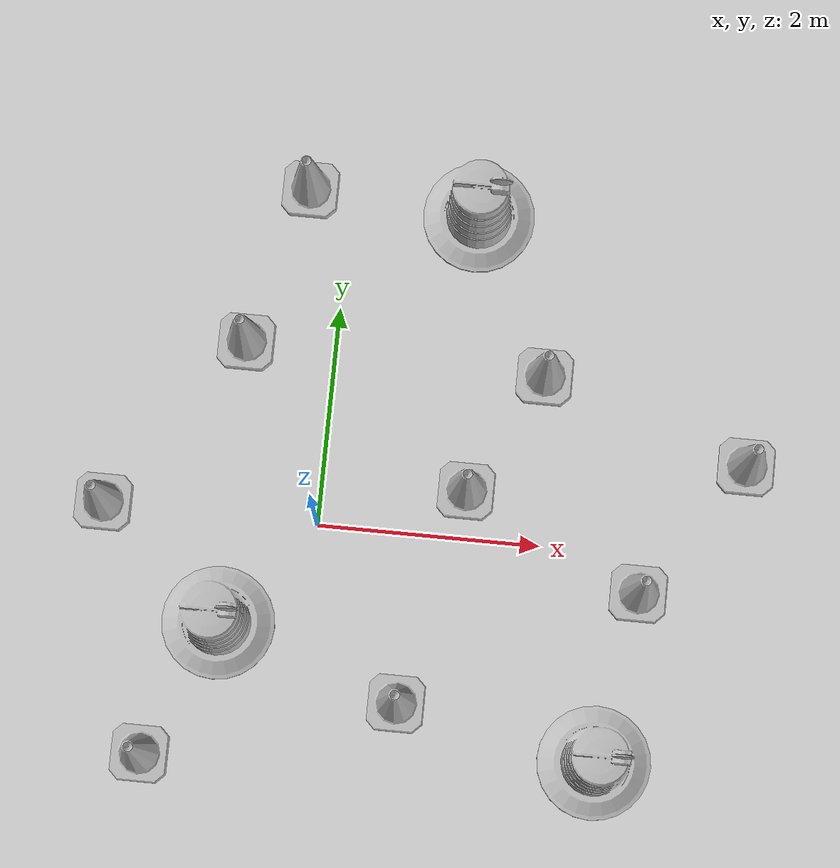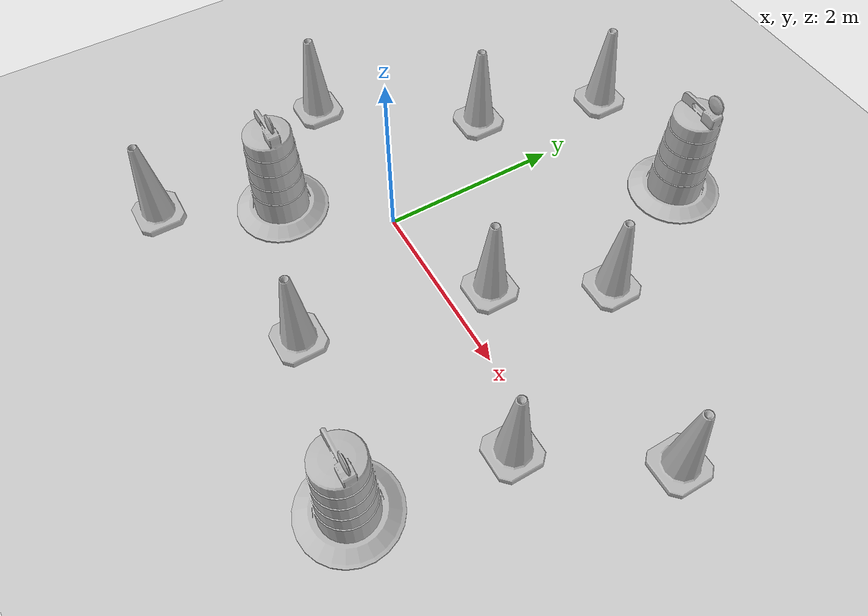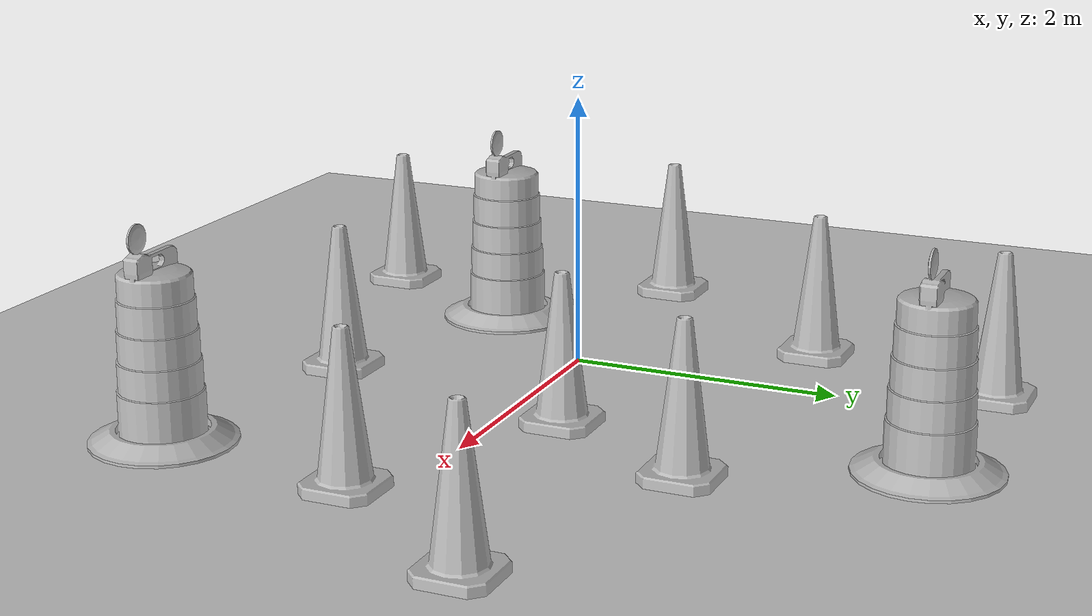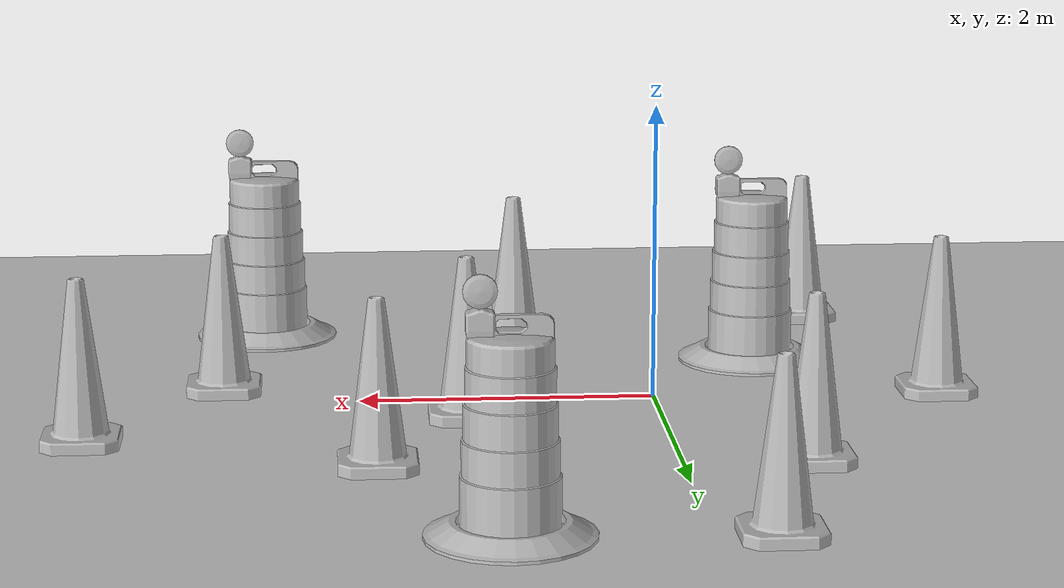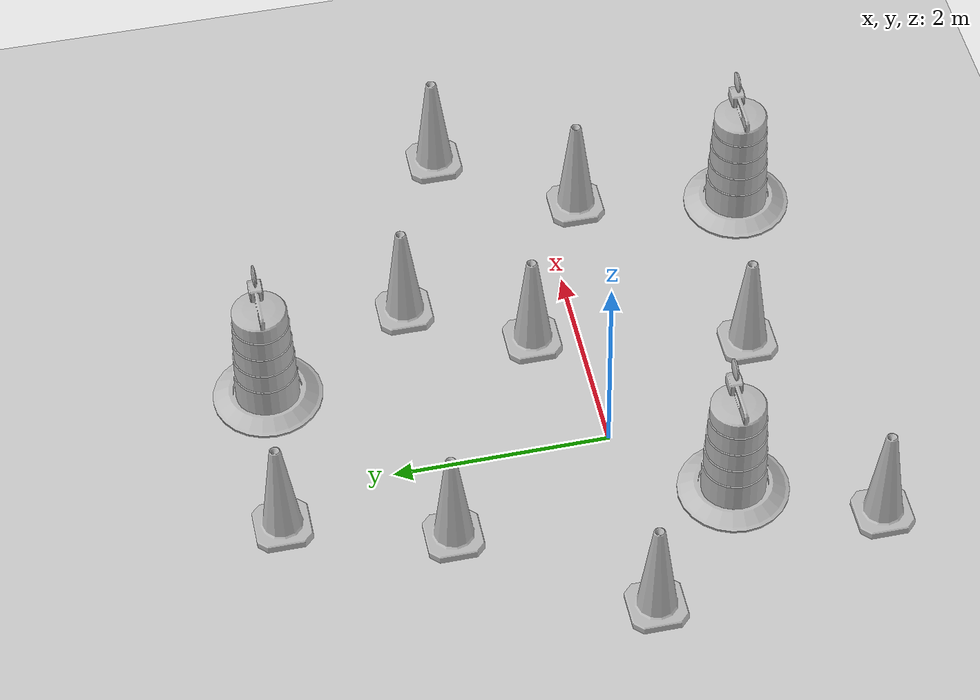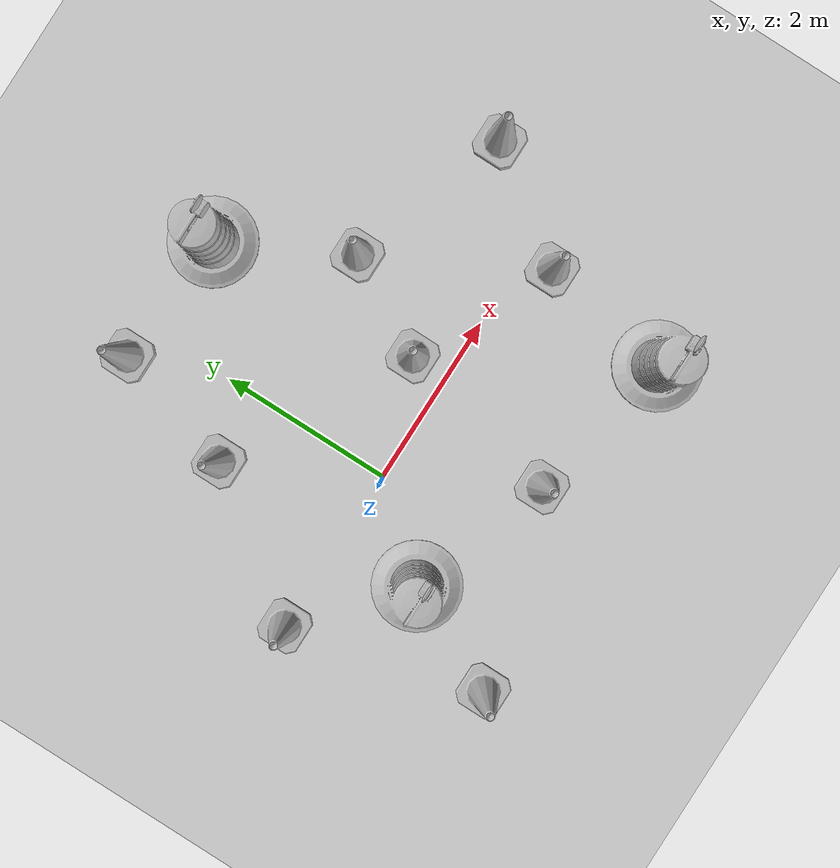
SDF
<sdf version="1.7">
 <world name="default">
  <light name="sun" type="directional">
   <pose>0 0 10 0 -0 0</pose>
   <diffuse>0.8 0.8 0.8 1</diffuse>
   <specular>0.2 0.2 0.2 1</specular>
   <attenuation>
    <range>1000</range>
    <constant>0.9</constant>
    <linear>0.01</linear>
    <quadratic>0.001</quadratic>
   </attenuation>
   <direction>-0.5 0.1 -0.9</direction>
   <spot><inner_angle>0</inner_angle><outer_angle>0</outer_angle><falloff>0</falloff></spot>
  </light>
  <model name="ground_plane">
   <static>1</static>
   <link name="link">
    <collision name="collision">
     <geometry><plane><normal>0 0 1</normal><size>100 100</size></plane></geometry>
     <surface>
      <contact><collide_bitmask>65535</collide_bitmask></contact>
      <friction><ode><mu>100</mu><mu2>50</mu2></ode></friction>
     </surface>
    </collision>
    <visual name="visual">
     <cast_shadows>0</cast_shadows>
     <geometry><plane><normal>0 0 1</normal><size>100 100</size></plane></geometry>
     <material>
      <script><uri>file://media/materials/scripts/gazebo.material</uri><name>Gazebo/Grey</name></script>
     </material>
    </visual>
   </link>
  </model>
  <gravity>0 0 -9.8</gravity>
  <magnetic_field>6e-06 2.3e-05 -4.2e-05</magnetic_field>
  <atmosphere type="adiabatic"/>
  <physics type="ode">
   <max_step_size>0.001</max_step_size>
   <real_time_factor>1</real_time_factor>
   <real_time_update_rate>1000</real_time_update_rate>
  </physics>
  <scene><ambient>0.4 0.4 0.4 1</ambient><background>0.7 0.7 0.7 1</background><shadows>1</shadows></scene>
  <audio><device>default</device></audio>
  <spherical_coordinates>
   <surface_model>EARTH_WGS84</surface_model>
   <latitude_deg>0</latitude_deg>
   <longitude_deg>0</longitude_deg>
   <elevation>0</elevation>
   <heading_deg>0</heading_deg>
  </spherical_coordinates>
  <model name="Construction Cone">
   <link name="link">
    <collision name="collision">
     <geometry>
      <mesh><scale>10 10 10</scale><uri>model://construction_cone/meshes/construction_cone.dae</uri></mesh>
     </geometry>
    </collision>
    <visual name="visual">
     <geometry>
      <mesh><scale>10 10 10</scale><uri>model://construction_cone/meshes/construction_cone.dae</uri></mesh>
     </geometry>
    </visual>
    <inertial>
     <inertia><ixx>1</ixx><ixy>0</ixy><ixz>0</ixz><iyy>1</iyy><iyz>0</iyz><izz>1</izz></inertia>
     <mass>1</mass>
    </inertial>
   </link>
   <pose>0.854074 -1.53222 -1e-05 0 -0 0</pose>
  </model>
  <model name="Construction Cone_0">
   <link name="link">
    <collision name="collision">
     <geometry>
      <mesh><scale>10 10 10</scale><uri>model://construction_cone/meshes/construction_cone.dae</uri></mesh>
     </geometry>
    </collision>
    <visual name="visual">
     <geometry>
      <mesh><scale>10 10 10</scale><uri>model://construction_cone/meshes/construction_cone.dae</uri></mesh>
     </geometry>
    </visual>
    <inertial>
     <inertia><ixx>1</ixx><ixy>0</ixy><ixz>0</ixz><iyy>1</iyy><iyz>0</iyz><izz>1</izz></inertia>
     <mass>1</mass>
    </inertial>
   </link>
   <pose>2.92288 -0.341181 -1e-05 0 -0 0</pose>
  </model>
  <model name="Construction Cone_1">
   <link name="link">
    <collision name="collision">
     <geometry>
      <mesh><scale>10 10 10</scale><uri>model://construction_cone/meshes/construction_cone.dae</uri></mesh>
     </geometry>
    </collision>
    <visual name="visual">
     <geometry>
      <mesh><scale>10 10 10</scale><uri>model://construction_cone/meshes/construction_cone.dae</uri></mesh>
     </geometry>
    </visual>
    <inertial>
     <inertia><ixx>1</ixx><ixy>0</ixy><ixz>0</ixz><iyy>1</iyy><iyz>0</iyz><izz>1</izz></inertia>
     <mass>1</mass>
    </inertial>
   </link>
   <pose>1.90664 1.54411 -0 0 -0 0</pose>
  </model>
  <model name="Construction Cone_2">
   <link name="link">
    <collision name="collision">
     <geometry>
      <mesh><scale>10 10 10</scale><uri>model://construction_cone/meshes/construction_cone.dae</uri></mesh>
     </geometry>
    </collision>
    <visual name="visual">
     <geometry>
      <mesh><scale>10 10 10</scale><uri>model://construction_cone/meshes/construction_cone.dae</uri></mesh>
     </geometry>
    </visual>
    <inertial>
     <inertia><ixx>1</ixx><ixy>0</ixy><ixz>0</ixz><iyy>1</iyy><iyz>0</iyz><izz>1</izz></inertia>
     <mass>1</mass>
    </inertial>
   </link>
   <pose>-0.38275 3.07136 -0 0 -1e-06 0</pose>
  </model>
  <model name="Construction Cone_3">
   <link name="link">
    <collision name="collision">
     <geometry>
      <mesh><scale>10 10 10</scale><uri>model://construction_cone/meshes/construction_cone.dae</uri></mesh>
     </geometry>
    </collision>
    <visual name="visual">
     <geometry>
      <mesh><scale>10 10 10</scale><uri>model://construction_cone/meshes/construction_cone.dae</uri></mesh>
     </geometry>
    </visual>
    <inertial>
     <inertia><ixx>1</ixx><ixy>0</ixy><ixz>0</ixz><iyy>1</iyy><iyz>0</iyz><izz>1</izz></inertia>
     <mass>1</mass>
    </inertial>
   </link>
   <pose>-0.819397 1.60461 -0 0 -0 0</pose>
  </model>
  <model name="Construction Cone_4">
   <link name="link">
    <collision name="collision">
     <geometry>
      <mesh><scale>10 10 10</scale><uri>model://construction_cone/meshes/construction_cone.dae</uri></mesh>
     </geometry>
    </collision>
    <visual name="visual">
     <geometry>
      <mesh><scale>10 10 10</scale><uri>model://construction_cone/meshes/construction_cone.dae</uri></mesh>
     </geometry>
    </visual>
    <inertial>
     <inertia><ixx>1</ixx><ixy>0</ixy><ixz>0</ixz><iyy>1</iyy><iyz>0</iyz><izz>1</izz></inertia>
     <mass>1</mass>
    </inertial>
   </link>
   <pose>-1.94906 0.023472 -0 0 -0 0</pose>
  </model>
  <model name="Construction Cone_5">
   <link name="link">
    <collision name="collision">
     <geometry>
      <mesh><scale>10 10 10</scale><uri>model://construction_cone/meshes/construction_cone.dae</uri></mesh>
     </geometry>
    </collision>
    <visual name="visual">
     <geometry>
      <mesh><scale>10 10 10</scale><uri>model://construction_cone/meshes/construction_cone.dae</uri></mesh>
     </geometry>
    </visual>
    <inertial>
     <inertia><ixx>1</ixx><ixy>0</ixy><ixz>0</ixz><iyy>1</iyy><iyz>0</iyz><izz>1</izz></inertia>
     <mass>1</mass>
    </inertial>
   </link>
   <pose>-1.37685 -2.19358 -0 0 -0 0</pose>
  </model>
  <model name="Construction Cone_6">
   <link name="link">
    <collision name="collision">
     <geometry>
      <mesh><scale>10 10 10</scale><uri>model://construction_cone/meshes/construction_cone.dae</uri></mesh>
     </geometry>
    </collision>
    <visual name="visual">
     <geometry>
      <mesh><scale>10 10 10</scale><uri>model://construction_cone/meshes/construction_cone.dae</uri></mesh>
     </geometry>
    </visual>
    <inertial>
     <inertia><ixx>1</ixx><ixy>0</ixy><ixz>0</ixz><iyy>1</iyy><iyz>0</iyz><izz>1</izz></inertia>
     <mass>1</mass>
    </inertial>
   </link>
   <pose>3.79296 0.897285 0 -0 -0 -0</pose>
  </model>
  <model name="Construction Barrel">
   <link name="link">
    <inertial>
     <pose>0 0 0.4 0 -0 0</pose>
     <mass>500</mass>
     <inertia><ixx>51.2096</ixx><iyy>51.2096</iyy><izz>25</izz><ixy>0</ixy><ixz>0</ixz><iyz>0</iyz></inertia>
    </inertial>
    <collision name="collision">
     <geometry><mesh><uri>model://construction_barrel/meshes/construction_barrel.dae</uri></mesh></geometry>
    </collision>
    <visual name="visual">
     <geometry><mesh><uri>model://construction_barrel/meshes/construction_barrel.dae</uri></mesh></geometry>
    </visual>
   </link>
   <pose>1.17367 2.96341 0 1e-06 1e-06 -9e-06</pose>
  </model>
  <model name="Construction Barrel_0">
   <link name="link">
    <inertial>
     <pose>0 0 0.4 0 -0 0</pose>
     <mass>500</mass>
     <inertia><ixx>51.2096</ixx><iyy>51.2096</iyy><izz>25</izz><ixy>0</ixy><ixz>0</ixz><iyz>0</iyz></inertia>
    </inertial>
    <collision name="collision">
     <geometry><mesh><uri>model://construction_barrel/meshes/construction_barrel.dae</uri></mesh></geometry>
    </collision>
    <visual name="visual">
     <geometry><mesh><uri>model://construction_barrel/meshes/construction_barrel.dae</uri></mesh></geometry>
    </visual>
   </link>
   <pose>-0.804384 -0.963064 2e-06 5e-06 3e-06 -8e-06</pose>
  </model>
  <model name="Construction Barrel_1">
   <link name="link">
    <inertial>
     <pose>0 0 0.4 0 -0 0</pose>
     <mass>500</mass>
     <inertia><ixx>51.2096</ixx><iyy>51.2096</iyy><izz>25</izz><ixy>0</ixy><ixz>0</ixz><iyz>0</iyz></inertia>
    </inertial>
    <collision name="collision">
     <geometry><mesh><uri>model://construction_barrel/meshes/construction_barrel.dae</uri></mesh></geometry>
    </collision>
    <visual name="visual">
     <geometry><mesh><uri>model://construction_barrel/meshes/construction_barrel.dae</uri></mesh></geometry>
    </visual>
   </link>
   <pose>2.659 -1.88742 0 0 0 -7e-06</pose>
  </model>
  <model name="Construction Cone_7">
   <link name="link">
    <collision name="collision">
     <geometry>
      <mesh><scale>10 10 10</scale><uri>model://construction_cone/meshes/construction_cone.dae</uri></mesh>
     </geometry>
    </collision>
    <visual name="visual">
     <geometry>
      <mesh><scale>10 10 10</scale><uri>model://construction_cone/meshes/construction_cone.dae</uri></mesh>
     </geometry>
    </visual>
    <inertial>
     <inertia><ixx>1</ixx><ixy>0</ixy><ixz>0</ixz><iyy>1</iyy><iyz>0</iyz><izz>1</izz></inertia>
     <mass>1</mass>
    </inertial>
   </link>
   <pose>1.297 0.435949 -0 0 -0 0</pose>
  </model>
 </world>
</sdf>
